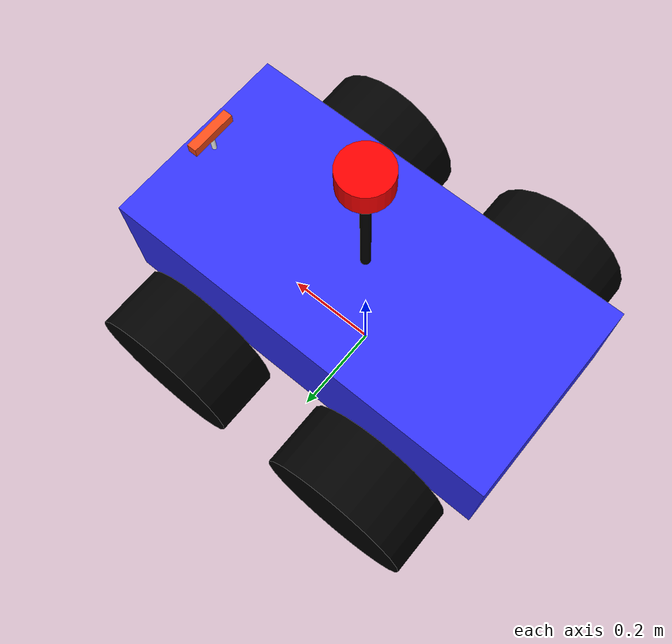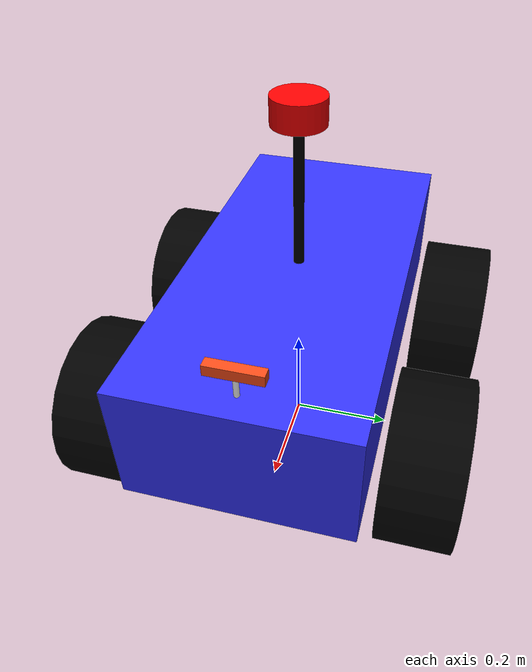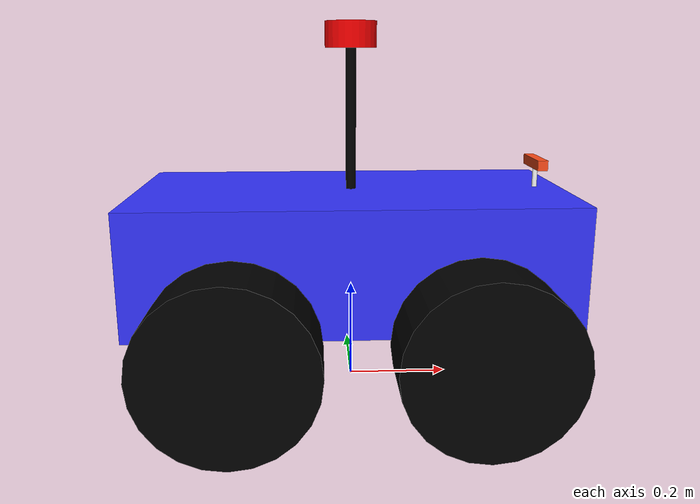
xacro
<?xml version="1.0"?>
<robot name ="custom_husky" xmlns:xacro="https://www.ros.org/wiki/xacro">

    <xacro:include filename="ros2_control.xacro"/>

    <xacro:property name="chassis_length" value="0.85"/>
    <xacro:property name="chassis_width" value="0.420"/>
    <xacro:property name="chassis_height" value="0.242"/>
    <xacro:property name="chassis_mass" value="50.0"/>
    <xacro:property name="wheel_radius" value="0.160"/>
    <xacro:property name="wheel_thickness" value="0.139"/>
    <xacro:property name="wheel_mass" value="2.0"/>
    <xacro:property name="wheel_offset_x" value="0.226"/>
    <xacro:property name="wheel_offset_y" value="0.1485"/>
    <xacro:property name="wheel_offset_z" value="0.01"/>
    <xacro:property name="caster_wheel_radius" value="0.01"/>
    <xacro:property name="caster_wheel_mass" value="0.01"/>
    <xacro:property name="caster_wheel_offset_x" value="0.075"/>
    <xacro:property name="caster_wheel_offset_z" value="${wheel_offset_z - wheel_radius + caster_wheel_radius}"/>

    <material name="white">
        <color rgba="1 1 1 1"/>
    </material>

    <material name="orange">
        <color rgba="1 0.3 0.1 1"/>
    </material>

    <material name="blue">
        <color rgba="0.2 0.2 1 1"/>
    </material>

    <material name="black">
        <color rgba="0 0 0 1"/>
    </material>

    <material name="red">
        <color rgba="1 0 0 1"/>
    </material>

    <!-- Base Footprint-->

    <link name="base_footprint"/>

    <!-- Base Link-->

    <link name="base_link">
        <visual>
            <origin xyz="0 0 0" rpy="0 0 0"/>
            <geometry>
                <box size="${chassis_length} ${chassis_width} ${chassis_height}"/>
            </geometry>
            <material name="blue"/>
        </visual>
        <collision>
            <origin xyz="0 0 0" rpy="0 0 0"/>
            <geometry>
                <box size="${chassis_length} ${chassis_width} ${chassis_height}"/>
            </geometry>
        </collision>
        <inertial>
            <origin xyz="0 0 0" rpy="0 0 0"/>
            <mass value="1.0"/>
            <inertia ixx="0.1" ixy="0.0" ixz="0.0"
                     iyy="0.1" iyz="0.0"
                     izz="0.1"/>
        </inertial>
    </link>

    <gazebo reference="base_link">
        <material>Gazebo/Blue</material>
    </gazebo>

    <joint name="base_footprint_joint" type="fixed">
        <origin xyz="0 0 ${chassis_height/2 + wheel_radius}" rpy="0 0 0"/>
        <parent link="base_footprint"/>
        <child link="base_link"/>
    </joint>

    <!-- Front Left Wheel -->

    <link name="front_left_wheel">
        <visual>
            <origin xyz="0 0 0" rpy="0 0 0"/>
            <geometry>
                <cylinder radius="${wheel_radius}" length="${wheel_thickness}"/>
            </geometry>
            <material name="black"/>
        </visual>
        <collision>
            <origin xyz="0 0 0" rpy="0 0 0"/>
            <geometry>
                <cylinder radius="${wheel_radius}" length="${wheel_thickness}"/>
            </geometry>
        </collision>
        <inertial>
            <origin xyz="0 0 0" rpy="0 0 0"/>
            <mass value="1.0"/>
            <inertia ixx="0.1" ixy="0.0" ixz="0.0"
                     iyy="0.1" iyz="0.0"
                     izz="0.1"/>
        </inertial>
    </link>

    <gazebo reference="front_left_wheel">
        <material>Gazebo/Black</material>
    </gazebo>

    <joint name="front_left_wheel_joint" type="continuous">
        <origin xyz="0.220 ${chassis_width/2 + wheel_thickness/2 + 0.02} -${chassis_height/2}" rpy="-1.57 0 0"/>
        <parent link="base_link"/>
        <child link="front_left_wheel"/>
        <axis xyz="0 0 1" rpy="0 0 0"/>
    </joint>

    <!-- Front Right Wheel -->

    <link name="front_right_wheel">
        <visual>
            <origin xyz="0 0 0" rpy="0 0 0"/>
            <geometry>
                <cylinder radius="${wheel_radius}" length="${wheel_thickness}"/>
            </geometry>
            <material name="black"/>
        </visual>
        <collision>
            <origin xyz="0 0 0" rpy="0 0 0"/>
            <geometry>
                <cylinder radius="${wheel_radius}" length="${wheel_thickness}"/>
            </geometry>
        </collision>
        <inertial>
            <origin xyz="0 0 0" rpy="0 0 0"/>
            <mass value="1.0"/>
            <inertia ixx="0.1" ixy="0.0" ixz="0.0"
                     iyy="0.1" iyz="0.0"
                     izz="0.1"/>
        </inertial>
    </link>

    <gazebo reference="front_right_wheel">
        <material>Gazebo/Black</material>
    </gazebo>

    <joint name="front_right_wheel_joint" type="continuous">
        <origin xyz="0.220 -${chassis_width/2 + wheel_thickness/2 + 0.02} -${chassis_height/2}" rpy="1.57 0 0"/>
        <parent link="base_link"/>
        <child link="front_right_wheel"/>
        <axis xyz="0 0 -1" rpy="0 0 0"/>
    </joint>

    <!-- Rear Left Wheel -->

    <link name="rear_left_wheel">
        <visual>
            <origin xyz="0 0 0" rpy="0 0 0"/>
            <geometry>
                <cylinder radius="${wheel_radius}" length="${wheel_thickness}"/>
            </geometry>
            <material name="black"/>
        </visual>
        <collision>
            <origin xyz="0 0 0" rpy="0 0 0"/>
            <geometry>
                <cylinder radius="${wheel_radius}" length="${wheel_thickness}"/>
            </geometry>
        </collision>
        <inertial>
            <origin xyz="0 0 0" rpy="0 0 0"/>
            <mass value="1.0"/>
            <inertia ixx="0.1" ixy="0.0" ixz="0.0"
                     iyy="0.1" iyz="0.0"
                     izz="0.1"/>
        </inertial>
    </link>

    <gazebo reference="rear_left_wheel">
        <material>Gazebo/Black</material>
    </gazebo>

    <joint name="rear_left_wheel_joint" type="continuous">
        <origin xyz="-0.220 ${chassis_width/2 + wheel_thickness/2 + 0.02} -${chassis_height/2}" rpy="-1.57 0 0"/>
        <parent link="base_link"/>
        <child link="rear_left_wheel"/>
        <axis xyz="0 0 1" rpy="0 0 0"/>
    </joint>

    <!-- Rear Right Wheel -->

    <link name="rear_right_wheel">
        <visual>
            <origin xyz="0 0 0" rpy="0 0 0"/>
            <geometry>
                <cylinder radius="${wheel_radius}" length="${wheel_thickness}"/>
            </geometry>
            <material name="black"/>
        </visual>
        <collision>
            <origin xyz="0 0 0" rpy="0 0 0"/>
            <geometry>
                <cylinder radius="${wheel_radius}" length="${wheel_thickness}"/>
            </geometry>
        </collision>
        <inertial>
            <origin xyz="0 0 0" rpy="0 0 0"/>
            <mass value="1.0"/>
            <inertia ixx="0.1" ixy="0.0" ixz="0.0"
                     iyy="0.1" iyz="0.0"
                     izz="0.1"/>
        </inertial>
    </link>

    <gazebo reference="rear_right_wheel">
        <material>Gazebo/Black</material>
    </gazebo>

    <joint name="rear_right_wheel_joint" type="continuous">
        <origin xyz="-0.220 -${chassis_width/2 + wheel_thickness/2 + 0.02} -${chassis_height/2}" rpy="1.57 0 0"/>
        <parent link="base_link"/>
        <child link="rear_right_wheel"/>
        <axis xyz="0 0 -1" rpy="0 0 0"/>
    </joint>

    <!-- Velodyne Mount -->

    <link name="velodyne_mount">
        <visual>
            <origin xyz="0 0 0" rpy="0 0 0"/>
            <geometry>
                <cylinder radius="0.010" length="0.30"/>
            </geometry>
            <material name="black"/>
        </visual>
        <collision>
            <origin xyz="0 0 0" rpy="0 0 0"/>
            <geometry>
                <cylinder radius="0.010" length="0.30"/>
            </geometry>
        </collision>
        <inertial>
            <origin xyz="0 0 0" rpy="0 0 0"/>
            <mass value="1.0"/>
            <inertia ixx="0.01" ixy="0.0" ixz="0.0"
                     iyy="0.01" iyz="0.0"
                     izz="0.01"/>
        </inertial>
    </link>

    <gazebo reference="velodyne_mount">
        <material>Gazebo/Black</material>
    </gazebo>

    <joint name="velodyne_mount_joint" type="fixed">
        <origin xyz="0 0 ${chassis_height/2 + 0.15}" rpy="0 0 0"/>
        <parent link="base_link"/>
        <child link="velodyne_mount"/>
    </joint>

    <!-- Velodyne -->

    <link name="velodyne">
        <visual>
            <origin xyz="0 0 0" rpy="0 0 0"/>
            <geometry>
                <cylinder radius="0.05" length="0.05"/>
            </geometry>
            <material name="red"/>
        </visual>
        <collision>
            <origin xyz="0 0 0" rpy="0 0 0"/>
            <geometry>
                <cylinder radius="0.05" length="0.05"/>
            </geometry>
        </collision>
        <inertial>
            <origin xyz="0 0 0" rpy="0 0 0"/>
            <mass value="1.0"/>
            <inertia ixx="0.05" ixy="0.0" ixz="0.0"
                     iyy="0.05" iyz="0.0"
                     izz="0.05"/>
        </inertial>
    </link>

    <gazebo reference="velodyne">
        <material>Gazebo/Red</material>
        <sensor type="gpu_ray" name="velodyne_lidar">
            <pose>0 0 0 0 0 0</pose>
            <visualize>false</visualize>
            <update_rate>20</update_rate>
            <update_rate>30</update_rate>
            <ray>
                <scan>
                    <horizontal>
                        <samples>720</samples>
                        <resolution>1</resolution>
                        <min_angle>-3.14</min_angle>
                        <max_angle>3.14</max_angle>
                    </horizontal>
                    <vertical>
                        <samples>16</samples>
                        <resolution>1</resolution>
                        <min_angle>-0.261799</min_angle>
                        <max_angle>0.261799</max_angle>
                    </vertical>
                </scan>
                <range>
                    <min>0.2</min>
                    <max>100.0</max>
                    <resolution>0.01</resolution>
                </range>
                <noise>
                    <type>gaussian</type>
                    <mean>0.0</mean>
                    <stddev>0.01</stddev>
                </noise>
            </ray>
            <plugin name="gazebo_ros_velodyne_controller" filename="libgazebo_ros_velodyne_laser.so">
            <ros>
                <remapping>~/out:=/velodyne_points</remapping>
            </ros>
            <frame_name>velodyne</frame_name>
            </plugin>
        </sensor>

    </gazebo>

    <joint name="velodyne_joint" type="fixed">
        <origin xyz="0 0 0.15" rpy="0 0 0"/>
        <parent link="velodyne_mount"/>
        <child link="velodyne"/>
    </joint>

    <!-- Camera Mount -->

    <link name="camera_mount">
        <visual>
            <origin xyz="0 0 0" rpy="0 0 0"/>
            <geometry>
                <cylinder radius="0.005" length="0.10"/>
            </geometry>
            <material name="white"/>
        </visual>
        <collision>
            <origin xyz="0 0 0" rpy="0 0 0"/>
            <geometry>
                <cylinder radius="0.005" length="0.10"/>
            </geometry>
        </collision>
        <inertial>
            <origin xyz="0 0 0" rpy="0 0 0"/>
            <mass value="1.0"/>
            <inertia ixx="0.01" ixy="0.0" ixz="0.0"
                     iyy="0.01" iyz="0.0"
                     izz="0.01"/>
        </inertial>
    </link>

    <gazebo reference="camera_mount">
        <material>Gazebo/White</material>
    </gazebo>

    <joint name="camera_mount_joint" type="fixed">
        <origin xyz="${chassis_length/2 - 0.05} 0 ${chassis_height/2}" rpy="0 0 0"/>
        <parent link="base_link"/>
        <child link="camera_mount"/>
    </joint>

    <!-- Camera Optical Link -->

    <link name="camera_optical_link"/>

    <joint name="camera_optical_joint" type="fixed">
        <origin xyz="0 0 0" rpy="-${pi/2} 0 -${pi/2}"/>
        <parent link="camera"/>
        <child link="camera_optical_link"/>
    </joint>

    <!-- Camera -->

    <link name="camera">
        <visual>
            <origin xyz="0 0 0" rpy="0 0 0"/>
            <geometry>
                <box size="0.02 0.10 0.02"/>
            </geometry>
            <material name="orange"/>
        </visual>
        <collision>
            <origin xyz="0 0 0" rpy="0 0 0"/>
            <geometry>
                <box size="0.02 0.10 0.02"/>
            </geometry>
        </collision>
        <inertial>
            <origin xyz="0 0 0" rpy="0 0 0"/>
            <mass value="1.0"/>
            <inertia ixx="0.05" ixy="0.0" ixz="0.0"
                     iyy="0.05" iyz="0.0"
                     izz="0.05"/>
        </inertial>
    </link>

    <gazebo reference="camera">
        <material>Gazebo/Orange</material>
        <sensor name="depth_camera" type="depth">
            <always_on>true</always_on>
            <visualize>true</visualize>
            <update_rate>30</update_rate>
            <update_rate>15</update_rate>
            <pose>0 0 0 0 0 0</pose>
            <depth_camera name="depth_cam">
                <horizontal_fov>2</horizontal_fov>
                <image>
                    <width>320</width>
                    <height>240</height>
                    <format>R8G8B8</format>
                </image>
                <clip>
                    <near>0.1</near>
                    <far>10.0</far>
                </clip>
            </depth_camera>

            <plugin name="depth_camera_driver" filename="libgazebo_ros_camera.so">
                <frame_name>camera_optical_link</frame_name>
            </plugin>
        </sensor>
    </gazebo>

    <joint name="camera_joint" type="fixed">
        <origin xyz="0 0 0.05" rpy="0 0 0"/>
        <parent link="camera_mount"/>
        <child link="camera"/>
    </joint>

    <!-- IMU Link -->

    <link name="imu_link"/>

    <joint name="imu_joint" type="fixed">
        <origin xyz="0 0 0" rpy="0 0 0"/>
        <parent link="base_link"/>
        <child link="imu_link"/>
    </joint>

    <gazebo reference="imu_link">
        <sensor type="imu" name="imu_sensor">
        <always_on>true</always_on>
        <update_rate>50</update_rate>
        <visualize>true</visualize>
        <plugin name="imu_plugin" filename="libgazebo_ros_imu_sensor.so">
            <ros>
                <namespace>/</namespace>
                <remapping>imu_plugin/out:=imu/data</remapping>
            </ros>
        <body_name>imu_link</body_name>
        <frame_name>imu_link</frame_name>
        <gaussian_noise>0.01</gaussian_noise>
        </plugin>
        </sensor>
    </gazebo>

</robot>
